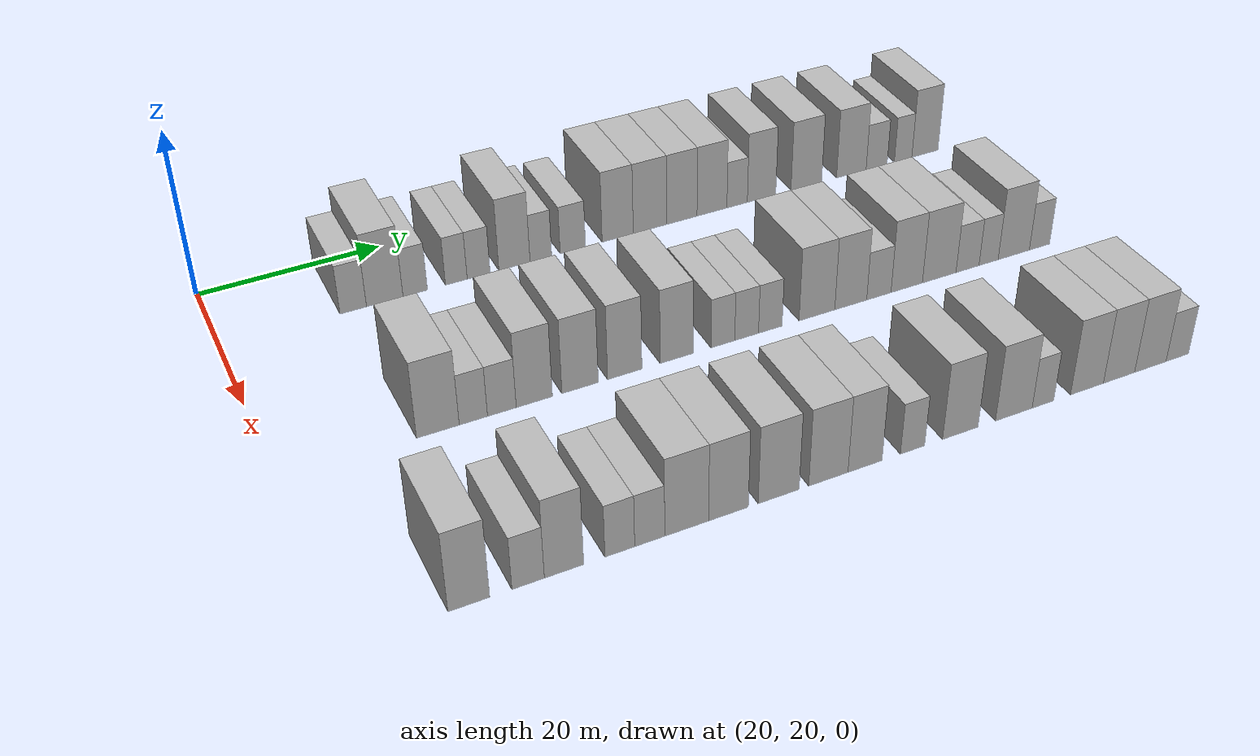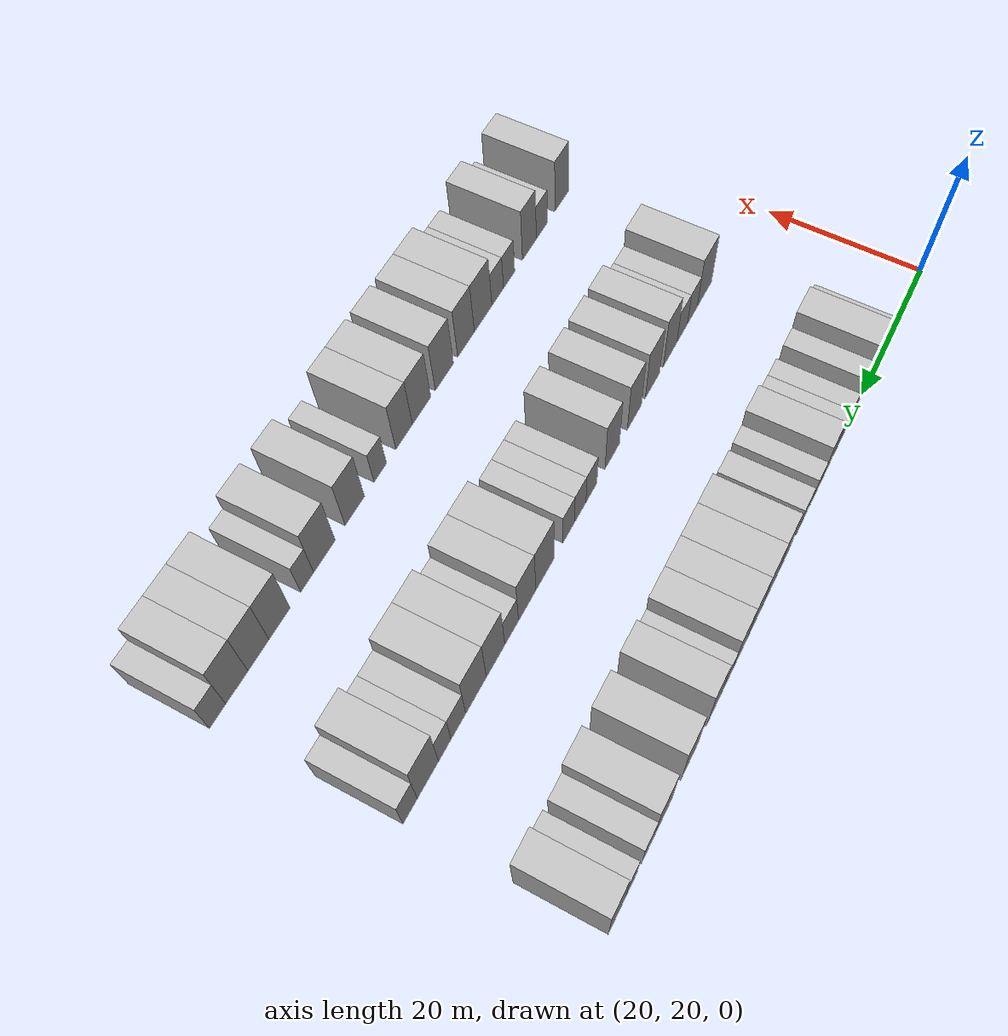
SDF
<sdf version="1.6">
 <world name="default">
  <model name="building_67">
   <static>1</static>
   <pose>25.0000 33.9964 0 0.000000 0.000000 0.000000</pose>
   <link name="link">
    <pose>0 0 3.00 0 0 0</pose>
    <collision name="collision"><geometry><box><size>10.0000 2.8536 6.0000</size></box></geometry></collision>
    <visual name="visual">
     <cast_shadows>0</cast_shadows>
     <geometry><box><size>10.0000 2.8536 6.0000</size></box></geometry>
     <material>
      <script>
       <uri>model://HANNAS_wall/materials/scripts</uri>
       <uri>model://HANNAS_wall/materials/textures</uri>
       <name>vrc/HANNAS_wall</name>
      </script>
     </material>
    </visual>
   </link>
  </model>
  <model name="building_68">
   <static>1</static>
   <pose>25.0000 37.4117 0 0.000000 0.000000 0.000000</pose>
   <link name="link">
    <pose>0 0 4.50 0 0 0</pose>
    <collision name="collision"><geometry><box><size>10.0000 3.9769 9.0000</size></box></geometry></collision>
    <visual name="visual">
     <cast_shadows>0</cast_shadows>
     <geometry><box><size>10.0000 3.9769 9.0000</size></box></geometry>
     <material>
      <script>
       <uri>model://HANNAS_wall/materials/scripts</uri>
       <uri>model://HANNAS_wall/materials/textures</uri>
       <name>vrc/HANNAS_wall</name>
      </script>
     </material>
    </visual>
   </link>
  </model>
  <model name="building_69">
   <static>1</static>
   <pose>25.0000 40.7507 0 0.000000 0.000000 0.000000</pose>
   <link name="link">
    <pose>0 0 3.00 0 0 0</pose>
    <collision name="collision"><geometry><box><size>10.0000 2.7012 6.0000</size></box></geometry></collision>
    <visual name="visual">
     <cast_shadows>0</cast_shadows>
     <geometry><box><size>10.0000 2.7012 6.0000</size></box></geometry>
     <material>
      <script>
       <uri>model://HANNAS_wall/materials/scripts</uri>
       <uri>model://HANNAS_wall/materials/textures</uri>
       <name>vrc/HANNAS_wall</name>
      </script>
     </material>
    </visual>
   </link>
  </model>
  <model name="building_70">
   <static>1</static>
   <pose>25.0000 45.3253 0 0.000000 0.000000 0.000000</pose>
   <link name="link">
    <pose>0 0 3.00 0 0 0</pose>
    <collision name="collision"><geometry><box><size>10.0000 2.4479 6.0000</size></box></geometry></collision>
    <visual name="visual">
     <cast_shadows>0</cast_shadows>
     <geometry><box><size>10.0000 2.4479 6.0000</size></box></geometry>
     <material>
      <script>
       <uri>model://HANNAS_wall/materials/scripts</uri>
       <uri>model://HANNAS_wall/materials/textures</uri>
       <name>vrc/HANNAS_wall</name>
      </script>
     </material>
    </visual>
   </link>
  </model>
  <model name="building_71">
   <static>1</static>
   <pose>25.0000 47.8509 0 0.000000 0.000000 0.000000</pose>
   <link name="link">
    <pose>0 0 3.00 0 0 0</pose>
    <collision name="collision"><geometry><box><size>10.0000 2.6032 6.0000</size></box></geometry></collision>
    <visual name="visual">
     <cast_shadows>0</cast_shadows>
     <geometry><box><size>10.0000 2.6032 6.0000</size></box></geometry>
     <material>
      <script>
       <uri>model://HANNAS_wall/materials/scripts</uri>
       <uri>model://HANNAS_wall/materials/textures</uri>
       <name>vrc/HANNAS_wall</name>
      </script>
     </material>
    </visual>
   </link>
  </model>
  <model name="building_72">
   <static>1</static>
   <pose>25.0000 51.9538 0 0.000000 0.000000 0.000000</pose>
   <link name="link">
    <pose>0 0 4.50 0 0 0</pose>
    <collision name="collision"><geometry><box><size>10.0000 3.6026 9.0000</size></box></geometry></collision>
    <visual name="visual">
     <cast_shadows>0</cast_shadows>
     <geometry><box><size>10.0000 3.6026 9.0000</size></box></geometry>
     <material>
      <script>
       <uri>model://HANNAS_wall/materials/scripts</uri>
       <uri>model://HANNAS_wall/materials/textures</uri>
       <name>vrc/HANNAS_wall</name>
      </script>
     </material>
    </visual>
   </link>
  </model>
  <model name="building_73">
   <static>1</static>
   <pose>25.0000 55.0184 0 0.000000 0.000000 0.000000</pose>
   <link name="link">
    <pose>0 0 3.00 0 0 0</pose>
    <collision name="collision"><geometry><box><size>10.0000 2.5267 6.0000</size></box></geometry></collision>
    <visual name="visual">
     <cast_shadows>0</cast_shadows>
     <geometry><box><size>10.0000 2.5267 6.0000</size></box></geometry>
     <material>
      <script>
       <uri>model://HANNAS_wall/materials/scripts</uri>
       <uri>model://HANNAS_wall/materials/textures</uri>
       <name>vrc/HANNAS_wall</name>
      </script>
     </material>
    </visual>
   </link>
  </model>
  <model name="building_74">
   <static>1</static>
   <pose>25.0000 58.7810 0 0.000000 0.000000 0.000000</pose>
   <link name="link">
    <pose>0 0 3.00 0 0 0</pose>
    <collision name="collision"><geometry><box><size>10.0000 2.9984 6.0000</size></box></geometry></collision>
    <visual name="visual">
     <cast_shadows>0</cast_shadows>
     <geometry><box><size>10.0000 2.9984 6.0000</size></box></geometry>
     <material>
      <script>
       <uri>model://HANNAS_wall/materials/scripts</uri>
       <uri>model://HANNAS_wall/materials/textures</uri>
       <name>vrc/HANNAS_wall</name>
      </script>
     </material>
    </visual>
   </link>
  </model>
  <model name="building_75">
   <static>1</static>
   <pose>25.0000 64.1665 0 0.000000 0.000000 0.000000</pose>
   <link name="link">
    <pose>0 0 4.50 0 0 0</pose>
    <collision name="collision"><geometry><box><size>10.0000 3.7727 9.0000</size></box></geometry></collision>
    <visual name="visual">
     <cast_shadows>0</cast_shadows>
     <geometry><box><size>10.0000 3.7727 9.0000</size></box></geometry>
     <material>
      <script>
       <uri>model://HANNAS_wall/materials/scripts</uri>
       <uri>model://HANNAS_wall/materials/textures</uri>
       <name>vrc/HANNAS_wall</name>
      </script>
     </material>
    </visual>
   </link>
  </model>
  <model name="building_76">
   <static>1</static>
   <pose>25.0000 68.1159 0 0.000000 0.000000 0.000000</pose>
   <link name="link">
    <pose>0 0 4.50 0 0 0</pose>
    <collision name="collision"><geometry><box><size>10.0000 4.1260 9.0000</size></box></geometry></collision>
    <visual name="visual">
     <cast_shadows>0</cast_shadows>
     <geometry><box><size>10.0000 4.1260 9.0000</size></box></geometry>
     <material>
      <script>
       <uri>model://HANNAS_wall/materials/scripts</uri>
       <uri>model://HANNAS_wall/materials/textures</uri>
       <name>vrc/HANNAS_wall</name>
      </script>
     </material>
    </visual>
   </link>
  </model>
  <model name="building_77">
   <static>1</static>
   <pose>25.0000 72.0688 0 0.000000 0.000000 0.000000</pose>
   <link name="link">
    <pose>0 0 4.50 0 0 0</pose>
    <collision name="collision"><geometry><box><size>10.0000 3.7799 9.0000</size></box></geometry></collision>
    <visual name="visual">
     <cast_shadows>0</cast_shadows>
     <geometry><box><size>10.0000 3.7799 9.0000</size></box></geometry>
     <material>
      <script>
       <uri>model://HANNAS_wall/materials/scripts</uri>
       <uri>model://HANNAS_wall/materials/textures</uri>
       <name>vrc/HANNAS_wall</name>
      </script>
     </material>
    </visual>
   </link>
  </model>
  <model name="building_78">
   <static>1</static>
   <pose>25.0000 75.8521 0 0.000000 0.000000 0.000000</pose>
   <link name="link">
    <pose>0 0 4.50 0 0 0</pose>
    <collision name="collision"><geometry><box><size>10.0000 3.7866 9.0000</size></box></geometry></collision>
    <visual name="visual">
     <cast_shadows>0</cast_shadows>
     <geometry><box><size>10.0000 3.7866 9.0000</size></box></geometry>
     <material>
      <script>
       <uri>model://HANNAS_wall/materials/scripts</uri>
       <uri>model://HANNAS_wall/materials/textures</uri>
       <name>vrc/HANNAS_wall</name>
      </script>
     </material>
    </visual>
   </link>
  </model>
  <model name="building_79">
   <static>1</static>
   <pose>25.0000 79.0562 0 0.000000 0.000000 0.000000</pose>
   <link name="link">
    <pose>0 0 3.00 0 0 0</pose>
    <collision name="collision"><geometry><box><size>10.0000 2.6215 6.0000</size></box></geometry></collision>
    <visual name="visual">
     <cast_shadows>0</cast_shadows>
     <geometry><box><size>10.0000 2.6215 6.0000</size></box></geometry>
     <material>
      <script>
       <uri>model://HANNAS_wall/materials/scripts</uri>
       <uri>model://HANNAS_wall/materials/textures</uri>
       <name>vrc/HANNAS_wall</name>
      </script>
     </material>
    </visual>
   </link>
  </model>
  <model name="building_80">
   <static>1</static>
   <pose>25.0000 82.2102 0 0.000000 0.000000 0.000000</pose>
   <link name="link">
    <pose>0 0 4.50 0 0 0</pose>
    <collision name="collision"><geometry><box><size>10.0000 3.6865 9.0000</size></box></geometry></collision>
    <visual name="visual">
     <cast_shadows>0</cast_shadows>
     <geometry><box><size>10.0000 3.6865 9.0000</size></box></geometry>
     <material>
      <script>
       <uri>model://HANNAS_wall/materials/scripts</uri>
       <uri>model://HANNAS_wall/materials/textures</uri>
       <name>vrc/HANNAS_wall</name>
      </script>
     </material>
    </visual>
   </link>
  </model>
  <model name="building_81">
   <static>1</static>
   <pose>25.0000 88.0897 0 0.000000 0.000000 0.000000</pose>
   <link name="link">
    <pose>0 0 4.50 0 0 0</pose>
    <collision name="collision"><geometry><box><size>10.0000 4.0726 9.0000</size></box></geometry></collision>
    <visual name="visual">
     <cast_shadows>0</cast_shadows>
     <geometry><box><size>10.0000 4.0726 9.0000</size></box></geometry>
     <material>
      <script>
       <uri>model://HANNAS_wall/materials/scripts</uri>
       <uri>model://HANNAS_wall/materials/textures</uri>
       <name>vrc/HANNAS_wall</name>
      </script>
     </material>
    </visual>
   </link>
  </model>
  <model name="building_82">
   <static>1</static>
   <pose>25.0000 94.1368 0 0.000000 0.000000 0.000000</pose>
   <link name="link">
    <pose>0 0 4.50 0 0 0</pose>
    <collision name="collision"><geometry><box><size>10.0000 4.0214 9.0000</size></box></geometry></collision>
    <visual name="visual">
     <cast_shadows>0</cast_shadows>
     <geometry><box><size>10.0000 4.0214 9.0000</size></box></geometry>
     <material>
      <script>
       <uri>model://HANNAS_wall/materials/scripts</uri>
       <uri>model://HANNAS_wall/materials/textures</uri>
       <name>vrc/HANNAS_wall</name>
      </script>
     </material>
    </visual>
   </link>
  </model>
  <model name="building_83">
   <static>1</static>
   <pose>25.0000 97.5914 0 0.000000 0.000000 0.000000</pose>
   <link name="link">
    <pose>0 0 3.00 0 0 0</pose>
    <collision name="collision"><geometry><box><size>10.0000 2.8879 6.0000</size></box></geometry></collision>
    <visual name="visual">
     <cast_shadows>0</cast_shadows>
     <geometry><box><size>10.0000 2.8879 6.0000</size></box></geometry>
     <material>
      <script>
       <uri>model://HANNAS_wall/materials/scripts</uri>
       <uri>model://HANNAS_wall/materials/textures</uri>
       <name>vrc/HANNAS_wall</name>
      </script>
     </material>
    </visual>
   </link>
  </model>
  <model name="building_84">
   <static>1</static>
   <pose>25.0000 101.2526 0 0.000000 0.000000 0.000000</pose>
   <link name="link">
    <pose>0 0 3.00 0 0 0</pose>
    <collision name="collision"><geometry><box><size>10.0000 2.4345 6.0000</size></box></geometry></collision>
    <visual name="visual">
     <cast_shadows>0</cast_shadows>
     <geometry><box><size>10.0000 2.4345 6.0000</size></box></geometry>
     <material>
      <script>
       <uri>model://HANNAS_wall/materials/scripts</uri>
       <uri>model://HANNAS_wall/materials/textures</uri>
       <name>vrc/HANNAS_wall</name>
      </script>
     </material>
    </visual>
   </link>
  </model>
  <model name="building_85">
   <static>1</static>
   <pose>25.0000 104.3048 0 0.000000 0.000000 0.000000</pose>
   <link name="link">
    <pose>0 0 4.50 0 0 0</pose>
    <collision name="collision"><geometry><box><size>10.0000 3.6700 9.0000</size></box></geometry></collision>
    <visual name="visual">
     <cast_shadows>0</cast_shadows>
     <geometry><box><size>10.0000 3.6700 9.0000</size></box></geometry>
     <material>
      <script>
       <uri>model://HANNAS_wall/materials/scripts</uri>
       <uri>model://HANNAS_wall/materials/textures</uri>
       <name>vrc/HANNAS_wall</name>
      </script>
     </material>
    </visual>
   </link>
  </model>
  <model name="building_197">
   <static>1</static>
   <pose>47.0000 35.5035 0 0.000000 0.000000 0.000000</pose>
   <link name="link">
    <pose>0 0 4.50 0 0 0</pose>
    <collision name="collision"><geometry><box><size>10.0000 4.2681 9.0000</size></box></geometry></collision>
    <visual name="visual">
     <cast_shadows>0</cast_shadows>
     <geometry><box><size>10.0000 4.2681 9.0000</size></box></geometry>
     <material>
      <script>
       <uri>model://HANNAS_wall/materials/scripts</uri>
       <uri>model://HANNAS_wall/materials/textures</uri>
       <name>vrc/HANNAS_wall</name>
      </script>
     </material>
    </visual>
   </link>
  </model>
  <model name="building_198">
   <static>1</static>
   <pose>47.0000 39.0665 0 0.000000 0.000000 0.000000</pose>
   <link name="link">
    <pose>0 0 3.00 0 0 0</pose>
    <collision name="collision"><geometry><box><size>10.0000 2.8577 6.0000</size></box></geometry></collision>
    <visual name="visual">
     <cast_shadows>0</cast_shadows>
     <geometry><box><size>10.0000 2.8577 6.0000</size></box></geometry>
     <material>
      <script>
       <uri>model://HANNAS_wall/materials/scripts</uri>
       <uri>model://HANNAS_wall/materials/textures</uri>
       <name>vrc/HANNAS_wall</name>
      </script>
     </material>
    </visual>
   </link>
  </model>
  <model name="building_199">
   <static>1</static>
   <pose>47.0000 41.9702 0 0.000000 0.000000 0.000000</pose>
   <link name="link">
    <pose>0 0 3.00 0 0 0</pose>
    <collision name="collision"><geometry><box><size>10.0000 2.9498 6.0000</size></box></geometry></collision>
    <visual name="visual">
     <cast_shadows>0</cast_shadows>
     <geometry><box><size>10.0000 2.9498 6.0000</size></box></geometry>
     <material>
      <script>
       <uri>model://HANNAS_wall/materials/scripts</uri>
       <uri>model://HANNAS_wall/materials/textures</uri>
       <name>vrc/HANNAS_wall</name>
      </script>
     </material>
    </visual>
   </link>
  </model>
  <model name="building_200">
   <static>1</static>
   <pose>47.0000 45.3266 0 0.000000 0.000000 0.000000</pose>
   <link name="link">
    <pose>0 0 4.50 0 0 0</pose>
    <collision name="collision"><geometry><box><size>10.0000 3.7628 9.0000</size></box></geometry></collision>
    <visual name="visual">
     <cast_shadows>0</cast_shadows>
     <geometry><box><size>10.0000 3.7628 9.0000</size></box></geometry>
     <material>
      <script>
       <uri>model://HANNAS_wall/materials/scripts</uri>
       <uri>model://HANNAS_wall/materials/textures</uri>
       <name>vrc/HANNAS_wall</name>
      </script>
     </material>
    </visual>
   </link>
  </model>
  <model name="building_201">
   <static>1</static>
   <pose>47.0000 50.1420 0 0.000000 0.000000 0.000000</pose>
   <link name="link">
    <pose>0 0 4.50 0 0 0</pose>
    <collision name="collision"><geometry><box><size>10.0000 3.8681 9.0000</size></box></geometry></collision>
    <visual name="visual">
     <cast_shadows>0</cast_shadows>
     <geometry><box><size>10.0000 3.8681 9.0000</size></box></geometry>
     <material>
      <script>
       <uri>model://HANNAS_wall/materials/scripts</uri>
       <uri>model://HANNAS_wall/materials/textures</uri>
       <name>vrc/HANNAS_wall</name>
      </script>
     </material>
    </visual>
   </link>
  </model>
  <model name="building_202">
   <static>1</static>
   <pose>47.0000 54.9417 0 0.000000 0.000000 0.000000</pose>
   <link name="link">
    <pose>0 0 4.50 0 0 0</pose>
    <collision name="collision"><geometry><box><size>10.0000 3.7312 9.0000</size></box></geometry></collision>
    <visual name="visual">
     <cast_shadows>0</cast_shadows>
     <geometry><box><size>10.0000 3.7312 9.0000</size></box></geometry>
     <material>
      <script>
       <uri>model://HANNAS_wall/materials/scripts</uri>
       <uri>model://HANNAS_wall/materials/textures</uri>
       <name>vrc/HANNAS_wall</name>
      </script>
     </material>
    </visual>
   </link>
  </model>
  <model name="building_203">
   <static>1</static>
   <pose>47.0000 60.6543 0 0.000000 0.000000 0.000000</pose>
   <link name="link">
    <pose>0 0 4.50 0 0 0</pose>
    <collision name="collision"><geometry><box><size>10.0000 3.6940 9.0000</size></box></geometry></collision>
    <visual name="visual">
     <cast_shadows>0</cast_shadows>
     <geometry><box><size>10.0000 3.6940 9.0000</size></box></geometry>
     <material>
      <script>
       <uri>model://HANNAS_wall/materials/scripts</uri>
       <uri>model://HANNAS_wall/materials/textures</uri>
       <name>vrc/HANNAS_wall</name>
      </script>
     </material>
    </visual>
   </link>
  </model>
  <model name="building_204">
   <static>1</static>
   <pose>47.0000 65.8510 0 0.000000 0.000000 0.000000</pose>
   <link name="link">
    <pose>0 0 3.00 0 0 0</pose>
    <collision name="collision"><geometry><box><size>10.0000 2.6994 6.0000</size></box></geometry></collision>
    <visual name="visual">
     <cast_shadows>0</cast_shadows>
     <geometry><box><size>10.0000 2.6994 6.0000</size></box></geometry>
     <material>
      <script>
       <uri>model://HANNAS_wall/materials/scripts</uri>
       <uri>model://HANNAS_wall/materials/textures</uri>
       <name>vrc/HANNAS_wall</name>
      </script>
     </material>
    </visual>
   </link>
  </model>
  <model name="building_205">
   <static>1</static>
   <pose>47.0000 68.5700 0 0.000000 0.000000 0.000000</pose>
   <link name="link">
    <pose>0 0 3.00 0 0 0</pose>
    <collision name="collision"><geometry><box><size>10.0000 2.7386 6.0000</size></box></geometry></collision>
    <visual name="visual">
     <cast_shadows>0</cast_shadows>
     <geometry><box><size>10.0000 2.7386 6.0000</size></box></geometry>
     <material>
      <script>
       <uri>model://HANNAS_wall/materials/scripts</uri>
       <uri>model://HANNAS_wall/materials/textures</uri>
       <name>vrc/HANNAS_wall</name>
      </script>
     </material>
    </visual>
   </link>
  </model>
  <model name="building_206">
   <static>1</static>
   <pose>47.0000 71.3109 0 0.000000 0.000000 0.000000</pose>
   <link name="link">
    <pose>0 0 3.00 0 0 0</pose>
    <collision name="collision"><geometry><box><size>10.0000 2.7432 6.0000</size></box></geometry></collision>
    <visual name="visual">
     <cast_shadows>0</cast_shadows>
     <geometry><box><size>10.0000 2.7432 6.0000</size></box></geometry>
     <material>
      <script>
       <uri>model://HANNAS_wall/materials/scripts</uri>
       <uri>model://HANNAS_wall/materials/textures</uri>
       <name>vrc/HANNAS_wall</name>
      </script>
     </material>
    </visual>
   </link>
  </model>
  <model name="building_207">
   <static>1</static>
   <pose>47.0000 76.8095 0 0.000000 0.000000 0.000000</pose>
   <link name="link">
    <pose>0 0 4.50 0 0 0</pose>
    <collision name="collision"><geometry><box><size>10.0000 4.2540 9.0000</size></box></geometry></collision>
    <visual name="visual">
     <cast_shadows>0</cast_shadows>
     <geometry><box><size>10.0000 4.2540 9.0000</size></box></geometry>
     <material>
      <script>
       <uri>model://HANNAS_wall/materials/scripts</uri>
       <uri>model://HANNAS_wall/materials/textures</uri>
       <name>vrc/HANNAS_wall</name>
      </script>
     </material>
    </visual>
   </link>
  </model>
  <model name="building_208">
   <static>1</static>
   <pose>47.0000 80.8740 0 0.000000 0.000000 0.000000</pose>
   <link name="link">
    <pose>0 0 4.50 0 0 0</pose>
    <collision name="collision"><geometry><box><size>10.0000 3.8749 9.0000</size></box></geometry></collision>
    <visual name="visual">
     <cast_shadows>0</cast_shadows>
     <geometry><box><size>10.0000 3.8749 9.0000</size></box></geometry>
     <material>
      <script>
       <uri>model://HANNAS_wall/materials/scripts</uri>
       <uri>model://HANNAS_wall/materials/textures</uri>
       <name>vrc/HANNAS_wall</name>
      </script>
     </material>
    </visual>
   </link>
  </model>
  <model name="building_209">
   <static>1</static>
   <pose>47.0000 84.3031 0 0.000000 0.000000 0.000000</pose>
   <link name="link">
    <pose>0 0 3.00 0 0 0</pose>
    <collision name="collision"><geometry><box><size>10.0000 2.9833 6.0000</size></box></geometry></collision>
    <visual name="visual">
     <cast_shadows>0</cast_shadows>
     <geometry><box><size>10.0000 2.9833 6.0000</size></box></geometry>
     <material>
      <script>
       <uri>model://HANNAS_wall/materials/scripts</uri>
       <uri>model://HANNAS_wall/materials/textures</uri>
       <name>vrc/HANNAS_wall</name>
      </script>
     </material>
    </visual>
   </link>
  </model>
  <model name="building_210">
   <static>1</static>
   <pose>47.0000 87.7518 0 0.000000 0.000000 0.000000</pose>
   <link name="link">
    <pose>0 0 4.50 0 0 0</pose>
    <collision name="collision"><geometry><box><size>10.0000 3.9140 9.0000</size></box></geometry></collision>
    <visual name="visual">
     <cast_shadows>0</cast_shadows>
     <geometry><box><size>10.0000 3.9140 9.0000</size></box></geometry>
     <material>
      <script>
       <uri>model://HANNAS_wall/materials/scripts</uri>
       <uri>model://HANNAS_wall/materials/textures</uri>
       <name>vrc/HANNAS_wall</name>
      </script>
     </material>
    </visual>
   </link>
  </model>
  <model name="building_211">
   <static>1</static>
   <pose>47.0000 91.8441 0 0.000000 0.000000 0.000000</pose>
   <link name="link">
    <pose>0 0 4.50 0 0 0</pose>
    <collision name="collision"><geometry><box><size>10.0000 4.2705 9.0000</size></box></geometry></collision>
    <visual name="visual">
     <cast_shadows>0</cast_shadows>
     <geometry><box><size>10.0000 4.2705 9.0000</size></box></geometry>
     <material>
      <script>
       <uri>model://HANNAS_wall/materials/scripts</uri>
       <uri>model://HANNAS_wall/materials/textures</uri>
       <name>vrc/HANNAS_wall</name>
      </script>
     </material>
    </visual>
   </link>
  </model>
  <model name="building_212">
   <static>1</static>
   <pose>47.0000 95.4592 0 0.000000 0.000000 0.000000</pose>
   <link name="link">
    <pose>0 0 3.00 0 0 0</pose>
    <collision name="collision"><geometry><box><size>10.0000 2.9596 6.0000</size></box></geometry></collision>
    <visual name="visual">
     <cast_shadows>0</cast_shadows>
     <geometry><box><size>10.0000 2.9596 6.0000</size></box></geometry>
     <material>
      <script>
       <uri>model://HANNAS_wall/materials/scripts</uri>
       <uri>model://HANNAS_wall/materials/textures</uri>
       <name>vrc/HANNAS_wall</name>
      </script>
     </material>
    </visual>
   </link>
  </model>
  <model name="building_213">
   <static>1</static>
   <pose>47.0000 98.1813 0 0.000000 0.000000 0.000000</pose>
   <link name="link">
    <pose>0 0 3.00 0 0 0</pose>
    <collision name="collision"><geometry><box><size>10.0000 2.4846 6.0000</size></box></geometry></collision>
    <visual name="visual">
     <cast_shadows>0</cast_shadows>
     <geometry><box><size>10.0000 2.4846 6.0000</size></box></geometry>
     <material>
      <script>
       <uri>model://HANNAS_wall/materials/scripts</uri>
       <uri>model://HANNAS_wall/materials/textures</uri>
       <name>vrc/HANNAS_wall</name>
      </script>
     </material>
    </visual>
   </link>
  </model>
  <model name="building_214">
   <static>1</static>
   <pose>47.0000 101.4808 0 0.000000 0.000000 0.000000</pose>
   <link name="link">
    <pose>0 0 4.50 0 0 0</pose>
    <collision name="collision"><geometry><box><size>10.0000 4.1146 9.0000</size></box></geometry></collision>
    <visual name="visual">
     <cast_shadows>0</cast_shadows>
     <geometry><box><size>10.0000 4.1146 9.0000</size></box></geometry>
     <material>
      <script>
       <uri>model://HANNAS_wall/materials/scripts</uri>
       <uri>model://HANNAS_wall/materials/textures</uri>
       <name>vrc/HANNAS_wall</name>
      </script>
     </material>
    </visual>
   </link>
  </model>
  <model name="building_215">
   <static>1</static>
   <pose>47.0000 104.8873 0 0.000000 0.000000 0.000000</pose>
   <link name="link">
    <pose>0 0 3.00 0 0 0</pose>
    <collision name="collision"><geometry><box><size>10.0000 2.6984 6.0000</size></box></geometry></collision>
    <visual name="visual">
     <cast_shadows>0</cast_shadows>
     <geometry><box><size>10.0000 2.6984 6.0000</size></box></geometry>
     <material>
      <script>
       <uri>model://HANNAS_wall/materials/scripts</uri>
       <uri>model://HANNAS_wall/materials/textures</uri>
       <name>vrc/HANNAS_wall</name>
      </script>
     </material>
    </visual>
   </link>
  </model>
  <model name="building_322">
   <static>1</static>
   <pose>69.0000 30.4707 0 0.000000 0.000000 0.000000</pose>
   <link name="link">
    <pose>0 0 4.50 0 0 0</pose>
    <collision name="collision"><geometry><box><size>10.0000 3.7313 9.0000</size></box></geometry></collision>
    <visual name="visual">
     <cast_shadows>0</cast_shadows>
     <geometry><box><size>10.0000 3.7313 9.0000</size></box></geometry>
     <material>
      <script>
       <uri>model://HANNAS_wall/materials/scripts</uri>
       <uri>model://HANNAS_wall/materials/textures</uri>
       <name>vrc/HANNAS_wall</name>
      </script>
     </material>
    </visual>
   </link>
  </model>
  <model name="building_323">
   <static>1</static>
   <pose>69.0000 35.8212 0 0.000000 0.000000 0.000000</pose>
   <link name="link">
    <pose>0 0 3.00 0 0 0</pose>
    <collision name="collision"><geometry><box><size>10.0000 2.9697 6.0000</size></box></geometry></collision>
    <visual name="visual">
     <cast_shadows>0</cast_shadows>
     <geometry><box><size>10.0000 2.9697 6.0000</size></box></geometry>
     <material>
      <script>
       <uri>model://HANNAS_wall/materials/scripts</uri>
       <uri>model://HANNAS_wall/materials/textures</uri>
       <name>vrc/HANNAS_wall</name>
      </script>
     </material>
    </visual>
   </link>
  </model>
  <model name="building_324">
   <static>1</static>
   <pose>69.0000 39.1333 0 0.000000 0.000000 0.000000</pose>
   <link name="link">
    <pose>0 0 4.50 0 0 0</pose>
    <collision name="collision"><geometry><box><size>10.0000 3.6545 9.0000</size></box></geometry></collision>
    <visual name="visual">
     <cast_shadows>0</cast_shadows>
     <geometry><box><size>10.0000 3.6545 9.0000</size></box></geometry>
     <material>
      <script>
       <uri>model://HANNAS_wall/materials/scripts</uri>
       <uri>model://HANNAS_wall/materials/textures</uri>
       <name>vrc/HANNAS_wall</name>
      </script>
     </material>
    </visual>
   </link>
  </model>
  <model name="building_325">
   <static>1</static>
   <pose>69.0000 44.3821 0 0.000000 0.000000 0.000000</pose>
   <link name="link">
    <pose>0 0 3.00 0 0 0</pose>
    <collision name="collision"><geometry><box><size>10.0000 2.8431 6.0000</size></box></geometry></collision>
    <visual name="visual">
     <cast_shadows>0</cast_shadows>
     <geometry><box><size>10.0000 2.8431 6.0000</size></box></geometry>
     <material>
      <script>
       <uri>model://HANNAS_wall/materials/scripts</uri>
       <uri>model://HANNAS_wall/materials/textures</uri>
       <name>vrc/HANNAS_wall</name>
      </script>
     </material>
    </visual>
   </link>
  </model>
  <model name="building_326">
   <static>1</static>
   <pose>69.0000 47.2599 0 0.000000 0.000000 0.000000</pose>
   <link name="link">
    <pose>0 0 3.00 0 0 0</pose>
    <collision name="collision"><geometry><box><size>10.0000 2.9125 6.0000</size></box></geometry></collision>
    <visual name="visual">
     <cast_shadows>0</cast_shadows>
     <geometry><box><size>10.0000 2.9125 6.0000</size></box></geometry>
     <material>
      <script>
       <uri>model://HANNAS_wall/materials/scripts</uri>
       <uri>model://HANNAS_wall/materials/textures</uri>
       <name>vrc/HANNAS_wall</name>
      </script>
     </material>
    </visual>
   </link>
  </model>
  <model name="building_327">
   <static>1</static>
   <pose>69.0000 50.8707 0 0.000000 0.000000 0.000000</pose>
   <link name="link">
    <pose>0 0 4.50 0 0 0</pose>
    <collision name="collision"><geometry><box><size>10.0000 4.3090 9.0000</size></box></geometry></collision>
    <visual name="visual">
     <cast_shadows>0</cast_shadows>
     <geometry><box><size>10.0000 4.3090 9.0000</size></box></geometry>
     <material>
      <script>
       <uri>model://HANNAS_wall/materials/scripts</uri>
       <uri>model://HANNAS_wall/materials/textures</uri>
       <name>vrc/HANNAS_wall</name>
      </script>
     </material>
    </visual>
   </link>
  </model>
  <model name="building_328">
   <static>1</static>
   <pose>69.0000 55.0231 0 0.000000 0.000000 0.000000</pose>
   <link name="link">
    <pose>0 0 4.50 0 0 0</pose>
    <collision name="collision"><geometry><box><size>10.0000 3.9959 9.0000</size></box></geometry></collision>
    <visual name="visual">
     <cast_shadows>0</cast_shadows>
     <geometry><box><size>10.0000 3.9959 9.0000</size></box></geometry>
     <material>
      <script>
       <uri>model://HANNAS_wall/materials/scripts</uri>
       <uri>model://HANNAS_wall/materials/textures</uri>
       <name>vrc/HANNAS_wall</name>
      </script>
     </material>
    </visual>
   </link>
  </model>
  <model name="building_329">
   <static>1</static>
   <pose>69.0000 60.1329 0 0.000000 0.000000 0.000000</pose>
   <link name="link">
    <pose>0 0 4.50 0 0 0</pose>
    <collision name="collision"><geometry><box><size>10.0000 4.2237 9.0000</size></box></geometry></collision>
    <visual name="visual">
     <cast_shadows>0</cast_shadows>
     <geometry><box><size>10.0000 4.2237 9.0000</size></box></geometry>
     <material>
      <script>
       <uri>model://HANNAS_wall/materials/scripts</uri>
       <uri>model://HANNAS_wall/materials/textures</uri>
       <name>vrc/HANNAS_wall</name>
      </script>
     </material>
    </visual>
   </link>
  </model>
  <model name="building_330">
   <static>1</static>
   <pose>69.0000 65.3181 0 0.000000 0.000000 0.000000</pose>
   <link name="link">
    <pose>0 0 4.50 0 0 0</pose>
    <collision name="collision"><geometry><box><size>10.0000 4.1467 9.0000</size></box></geometry></collision>
    <visual name="visual">
     <cast_shadows>0</cast_shadows>
     <geometry><box><size>10.0000 4.1467 9.0000</size></box></geometry>
     <material>
      <script>
       <uri>model://HANNAS_wall/materials/scripts</uri>
       <uri>model://HANNAS_wall/materials/textures</uri>
       <name>vrc/HANNAS_wall</name>
      </script>
     </material>
    </visual>
   </link>
  </model>
  <model name="building_331">
   <static>1</static>
   <pose>69.0000 69.2227 0 0.000000 0.000000 0.000000</pose>
   <link name="link">
    <pose>0 0 4.50 0 0 0</pose>
    <collision name="collision"><geometry><box><size>10.0000 3.6626 9.0000</size></box></geometry></collision>
    <visual name="visual">
     <cast_shadows>0</cast_shadows>
     <geometry><box><size>10.0000 3.6626 9.0000</size></box></geometry>
     <material>
      <script>
       <uri>model://HANNAS_wall/materials/scripts</uri>
       <uri>model://HANNAS_wall/materials/textures</uri>
       <name>vrc/HANNAS_wall</name>
      </script>
     </material>
    </visual>
   </link>
  </model>
  <model name="building_332">
   <static>1</static>
   <pose>69.0000 74.3876 0 0.000000 0.000000 0.000000</pose>
   <link name="link">
    <pose>0 0 3.00 0 0 0</pose>
    <collision name="collision"><geometry><box><size>10.0000 2.6673 6.0000</size></box></geometry></collision>
    <visual name="visual">
     <cast_shadows>0</cast_shadows>
     <geometry><box><size>10.0000 2.6673 6.0000</size></box></geometry>
     <material>
      <script>
       <uri>model://HANNAS_wall/materials/scripts</uri>
       <uri>model://HANNAS_wall/materials/textures</uri>
       <name>vrc/HANNAS_wall</name>
      </script>
     </material>
    </visual>
   </link>
  </model>
  <model name="building_333">
   <static>1</static>
   <pose>69.0000 79.7194 0 0.000000 0.000000 0.000000</pose>
   <link name="link">
    <pose>0 0 4.50 0 0 0</pose>
    <collision name="collision"><geometry><box><size>10.0000 3.9962 9.0000</size></box></geometry></collision>
    <visual name="visual">
     <cast_shadows>0</cast_shadows>
     <geometry><box><size>10.0000 3.9962 9.0000</size></box></geometry>
     <material>
      <script>
       <uri>model://HANNAS_wall/materials/scripts</uri>
       <uri>model://HANNAS_wall/materials/textures</uri>
       <name>vrc/HANNAS_wall</name>
      </script>
     </material>
    </visual>
   </link>
  </model>
  <model name="building_334">
   <static>1</static>
   <pose>69.0000 85.8474 0 0.000000 0.000000 0.000000</pose>
   <link name="link">
    <pose>0 0 4.50 0 0 0</pose>
    <collision name="collision"><geometry><box><size>10.0000 4.2598 9.0000</size></box></geometry></collision>
    <visual name="visual">
     <cast_shadows>0</cast_shadows>
     <geometry><box><size>10.0000 4.2598 9.0000</size></box></geometry>
     <material>
      <script>
       <uri>model://HANNAS_wall/materials/scripts</uri>
       <uri>model://HANNAS_wall/materials/textures</uri>
       <name>vrc/HANNAS_wall</name>
      </script>
     </material>
    </visual>
   </link>
  </model>
  <model name="building_335">
   <static>1</static>
   <pose>69.0000 89.2477 0 0.000000 0.000000 0.000000</pose>
   <link name="link">
    <pose>0 0 3.00 0 0 0</pose>
    <collision name="collision"><geometry><box><size>10.0000 2.5408 6.0000</size></box></geometry></collision>
    <visual name="visual">
     <cast_shadows>0</cast_shadows>
     <geometry><box><size>10.0000 2.5408 6.0000</size></box></geometry>
     <material>
      <script>
       <uri>model://HANNAS_wall/materials/scripts</uri>
       <uri>model://HANNAS_wall/materials/textures</uri>
       <name>vrc/HANNAS_wall</name>
      </script>
     </material>
    </visual>
   </link>
  </model>
  <model name="building_336">
   <static>1</static>
   <pose>69.0000 94.5012 0 0.000000 0.000000 0.000000</pose>
   <link name="link">
    <pose>0 0 4.50 0 0 0</pose>
    <collision name="collision"><geometry><box><size>10.0000 3.9663 9.0000</size></box></geometry></collision>
    <visual name="visual">
     <cast_shadows>0</cast_shadows>
     <geometry><box><size>10.0000 3.9663 9.0000</size></box></geometry>
     <material>
      <script>
       <uri>model://HANNAS_wall/materials/scripts</uri>
       <uri>model://HANNAS_wall/materials/textures</uri>
       <name>vrc/HANNAS_wall</name>
      </script>
     </material>
    </visual>
   </link>
  </model>
  <model name="building_337">
   <static>1</static>
   <pose>69.0000 98.3975 0 0.000000 0.000000 0.000000</pose>
   <link name="link">
    <pose>0 0 4.50 0 0 0</pose>
    <collision name="collision"><geometry><box><size>10.0000 3.8263 9.0000</size></box></geometry></collision>
    <visual name="visual">
     <cast_shadows>0</cast_shadows>
     <geometry><box><size>10.0000 3.8263 9.0000</size></box></geometry>
     <material>
      <script>
       <uri>model://HANNAS_wall/materials/scripts</uri>
       <uri>model://HANNAS_wall/materials/textures</uri>
       <name>vrc/HANNAS_wall</name>
      </script>
     </material>
    </visual>
   </link>
  </model>
  <model name="building_338">
   <static>1</static>
   <pose>69.0000 102.2743 0 0.000000 0.000000 0.000000</pose>
   <link name="link">
    <pose>0 0 4.50 0 0 0</pose>
    <collision name="collision"><geometry><box><size>10.0000 3.9273 9.0000</size></box></geometry></collision>
    <visual name="visual">
     <cast_shadows>0</cast_shadows>
     <geometry><box><size>10.0000 3.9273 9.0000</size></box></geometry>
     <material>
      <script>
       <uri>model://HANNAS_wall/materials/scripts</uri>
       <uri>model://HANNAS_wall/materials/textures</uri>
       <name>vrc/HANNAS_wall</name>
      </script>
     </material>
    </visual>
   </link>
  </model>
  <model name="building_339">
   <static>1</static>
   <pose>69.0000 105.6519 0 0.000000 0.000000 0.000000</pose>
   <link name="link">
    <pose>0 0 3.00 0 0 0</pose>
    <collision name="collision"><geometry><box><size>10.0000 2.8277 6.0000</size></box></geometry></collision>
    <visual name="visual">
     <cast_shadows>0</cast_shadows>
     <geometry><box><size>10.0000 2.8277 6.0000</size></box></geometry>
     <material>
      <script>
       <uri>model://HANNAS_wall/materials/scripts</uri>
       <uri>model://HANNAS_wall/materials/textures</uri>
       <name>vrc/HANNAS_wall</name>
      </script>
     </material>
    </visual>
   </link>
  </model>
 </world>
</sdf>
